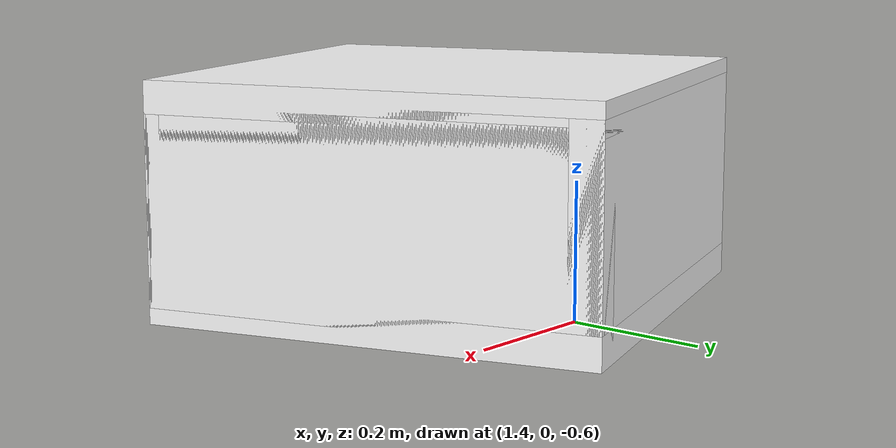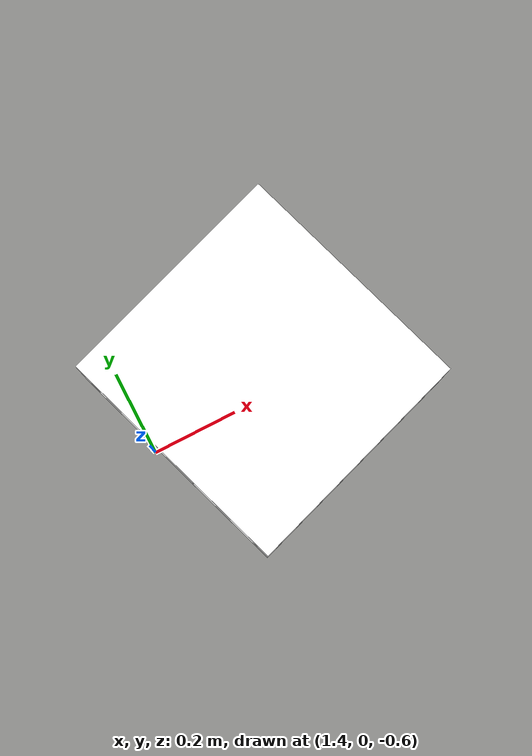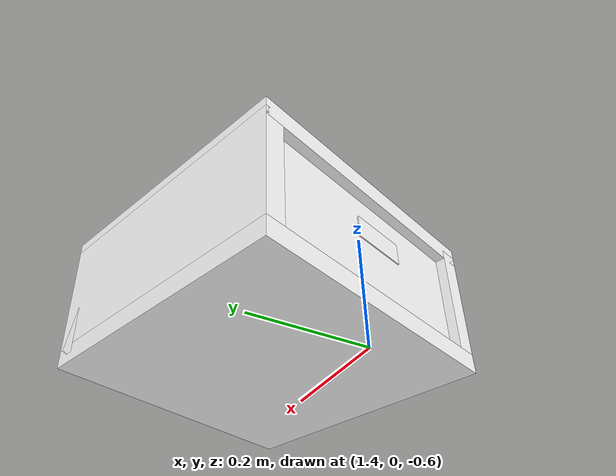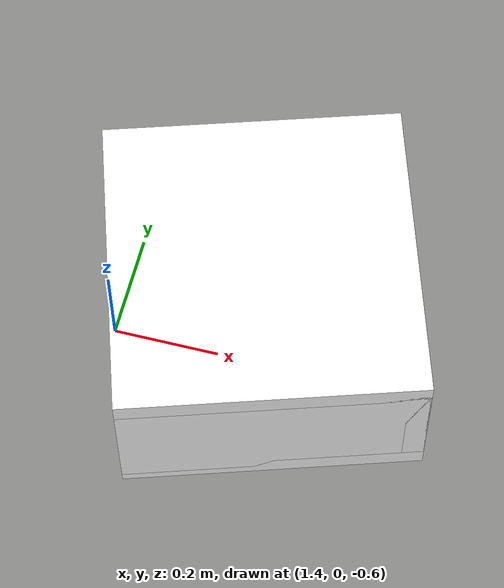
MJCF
<mujoco model="drawer">
        <compiler angle="radian" eulerseq='zxy' />
        <option gravity = "0 0 0" />
        <option>
            <flag contact = "disable"/>
        </option>
        <statistic	extent="1.0" center="0.0 0.0 0.0"/>
        <visual>
            <map fogstart="3" fogend="5" force="0.1" znear=" 0.100000 " zfar=" 12.000000 "/>
        </visual>
        <size njmax="500" nconmax="100" />
        <actuator>
            <velocity joint="drawerJ" name="viva_revolution" kv='10'></velocity>
        </actuator>
        <asset>
            <texture builtin="flat" name="objtex" height="32" width="32" rgb1="1 1 1" type="cube"></texture>
            <texture builtin="flat" name="handletex" height="32" width="32" rgb1="1 1 1" type="cube"></texture>
            <material name="geomObj" shininess="0.03" specular="0.75" texture="objtex"></material>
            <material name="geomHandle" shininess="0.03" specular="0.75" texture="handletex"></material>
        </asset>
        <worldbody>
            <body name="cabinet_bottom" pos= " 1.681977 0.019371 -0.489138 "  quat= " -0.157671 0.000000 0.000000 0.987492" >
                <inertial pos="0 0 0" mass="1" diaginertia="1 1 1" />
                <geom size= " 0.267255 0.275832 0.019604 "  type="box" material="geomObj" name="b"/>
                <body name="cabinet_left" pos= " 0.000000 -0.256228 0.123855 " >
                    <inertial pos="0 0 0" mass="1" diaginertia="1 1 1" />
                    <geom size= " 0.267255 0.019604 0.123855 "  type="box" material="geomObj" name="c" />
                </body>
                <body name="cabinet_right" pos= " 0.000000 0.256228 0.123855 " >
                    <inertial pos="0 0 0" mass="1" diaginertia="1 1 1" />
                    <geom size= " 0.267255 0.019604 0.123855 "  type="box" material="geomObj" name="d" />
                </body>
                <body name="cabinet_top" pos= " 0.000000 0.000000 0.247710 " >
                    <inertial pos="0 0 0" mass="1" diaginertia="1 1 1" />
                    <geom size= " 0.267255 0.275832 0.019604 "  type="box" material="geomObj" name="e"/>
                </body>
                <body name="cabinet_back" pos= " -0.247651 0.000000 0.123855 "  >
                    <inertial pos="0 0 0" mass="1" diaginertia="1 1 1" />
                    <geom size= " 0.019604 0.275832 0.123855 "  type="box" material="geomObj" name="f" />
                </body>
                <body name="drawer" pos= " 0.000000 0.000000 0.009802 "  >
                    <geom size= " 0.247651 0.256228 0.019604 "  type="box" material="geomObj" name="ddddfadfadsfac" />
                    <joint name="drawerJ" pos="0 0 0" axis="1 0 0" type="slide" limited="true" range= "0  0.40088246762752533 "  />
                    <inertial pos="0 0 0" mass="1" diaginertia="1 1 1" />
                    <body name="drawer_left" pos= " 0.000000 -0.236624 0.123855 " >
                        <inertial pos="0 0 0" mass="1" diaginertia="1 1 1" />
                        <geom size= " 0.247651 0.019604 0.104251 "  type="box" material="geomObj" name="ddc" />
                    </body>
                    <body name="drawer_right" pos= " 0.000000 0.236624 0.123855 " >
                        <inertial pos="0 0 0" mass="1" diaginertia="1 1 1" />
                        <geom size= " 0.247651 0.019604 0.104251 "  type="box" material="geomObj" name="dddd" />
                    </body>
                    <body name="drawer_front" pos= " 0.228047 0.000000 0.123855 " >
                        <inertial pos="0 0 0" mass="1" diaginertia="1 1 1" />
                        <geom size= " 0.019604 0.256228 0.104251 "  type="box" material="geomObj" name="eeeee"/>
                    </body>
                    <body name="drawer_back" pos= " -0.247651 0.000000 0.123855 "  >
                        <inertial pos="0 0 0" mass="1" diaginertia="1 1 1" />
                        <geom size= " 0.019604 0.256228 0.104251 "  type="box" material="geomObj" name="fffff" />
                    </body>
                    <body name="knob" pos= " 0.267255 0.000000 0.123855 " >
                        <inertial pos="0 0 0" mass="0.1" diaginertia="0.1 0.1 0.1" />
                        <geom size= " 0.001002 0.055509 0.021688 "  pos="0 0 0" type="box" material="geomHandle" name="handle"/>
                    </body>
                </body>
            </body>
            <body name="external_camera_body_0" pos="0.0 0 0.00">
                <camera euler="-1.57 1.57 0.0" fovy=" 54.280851 " name="external_camera_0" pos="0.0 0 0"></camera>
                <inertial pos= " 0.00 0.0 0.000000 " mass="1" diaginertia="1 1 1" />
                <joint name="cam_j" pos="0.0 0 0" axis = "1 0 0" type="free" />
            </body>
        </worldbody>
    </mujoco>
